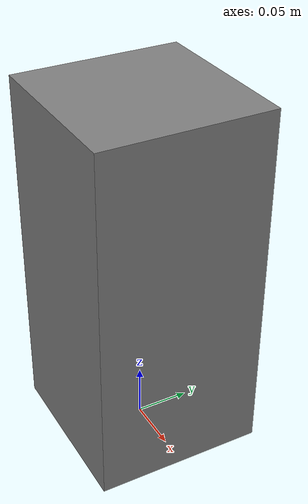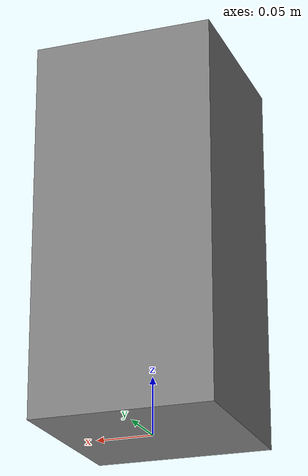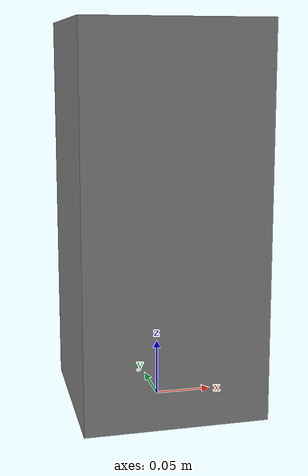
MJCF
<mujoco model="holder_tree">
  <asset>
    <material name="holder_tree_mat" rgba="0.5 0.36 0.22 1" specular="0.3" shininess="0.1"/>
    <mesh name="holder_tree_vis" file="holder_tree_libero.obj" scale="1 1 1"/>
  </asset>
  <worldbody>
    <body>
      <body name="object">
        <geom type="mesh" mesh="holder_tree_vis" material="holder_tree_mat" group="1" contype="0" conaffinity="0"/>
        <geom name="holder_tree_collision" type="box" size="0.07882 0.07854 0.16729" pos="0 0 0.16729" group="0" density="100" friction="0.95 0.3 0.1" solimp="0.998 0.998 0.001" solref="0.001 1"/>
      </body>
      <site rgba="0 0 0 0" size="0.005" pos="0 0 0" name="bottom_site"/>
      <site rgba="0 0 0 0" size="0.005" pos="0 0 0.33459" name="top_site"/>
      <site rgba="0 0 0 0" size="0.005" pos="0.07882 0 0" name="horizontal_radius_site"/>
    </body>
  </worldbody>
</mujoco>
